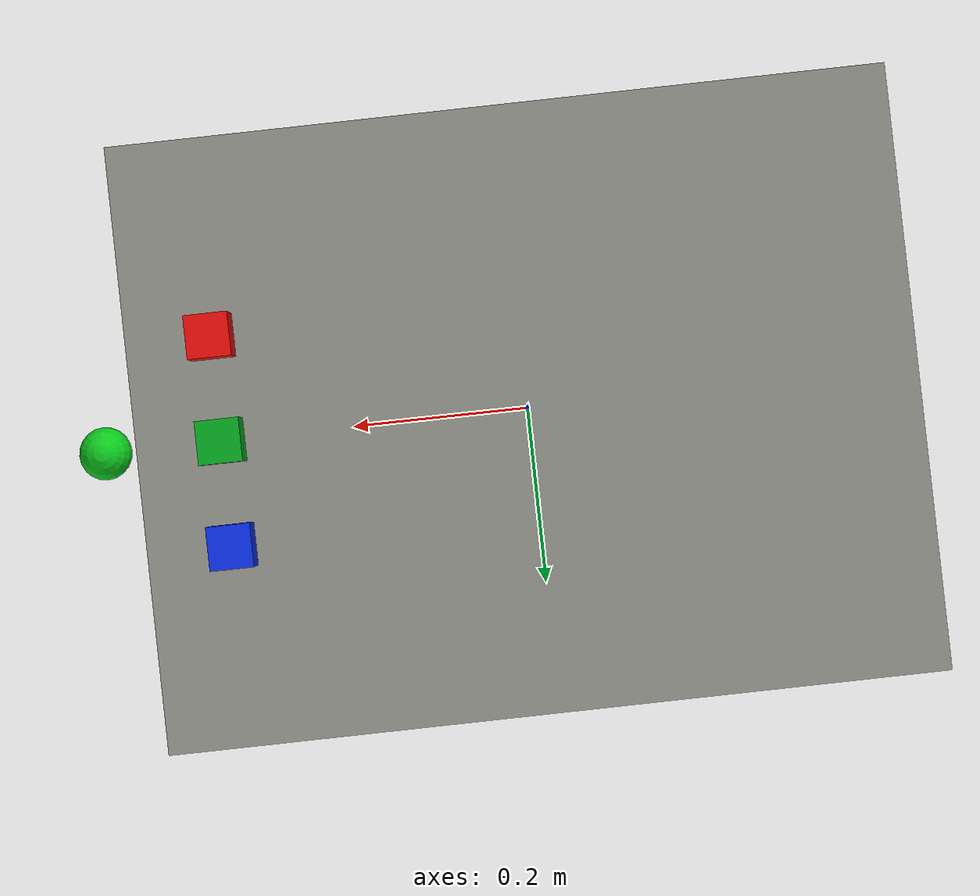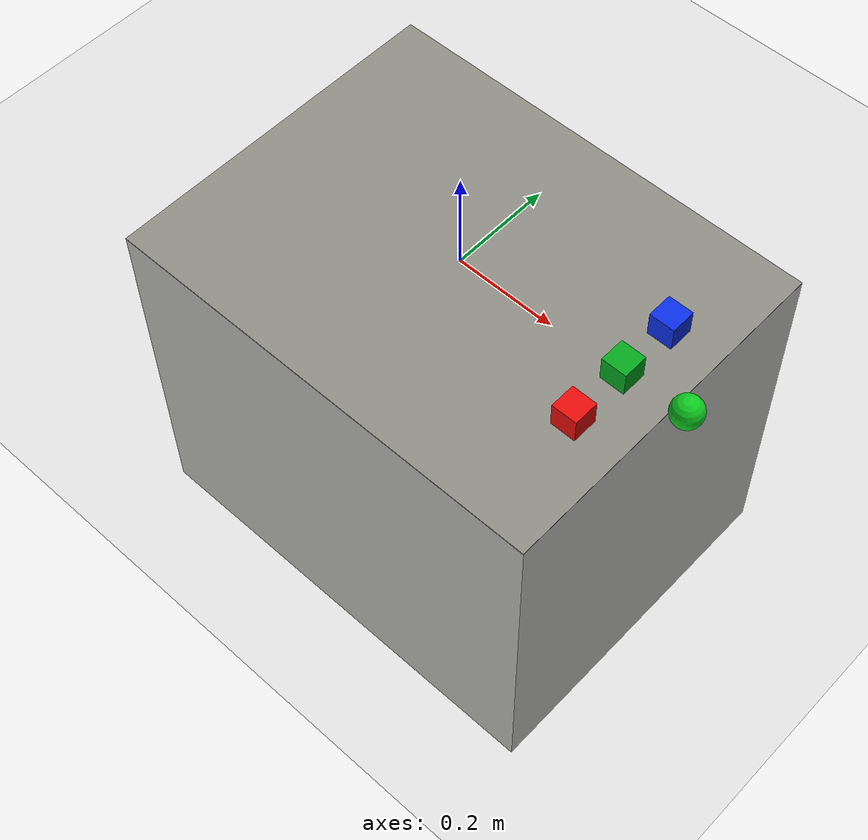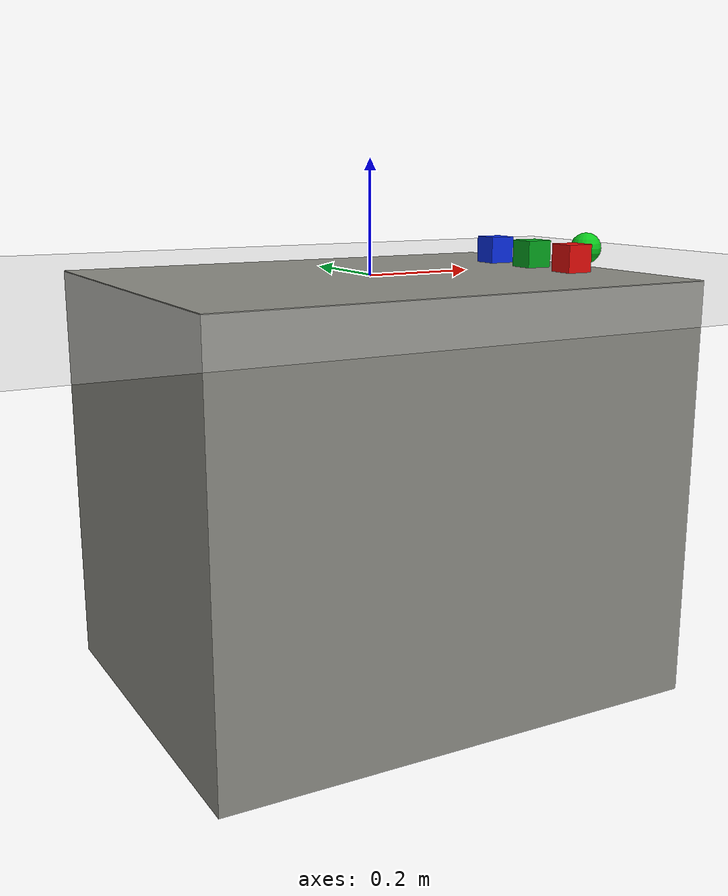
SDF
<?xml version="1.0"?>
<sdf version="1.6">
  <world name="empty_workcell">
    <gravity>0 0 -9.81</gravity>

    <plugin name="gazebo_ros_state" filename="libgazebo_ros_state.so">
      <ros>
        <namespace>/gazebo</namespace>
      </ros>
      <update_rate>20.0</update_rate>
    </plugin>

    <plugin name="gazebo_ros_properties" filename="libgazebo_ros_properties.so">
      <ros>
        <namespace>/gazebo</namespace>
      </ros>
    </plugin>

    <scene>
      <ambient>0.55 0.55 0.55 1</ambient>
      <background>0.78 0.82 0.86 1</background>
      <shadows>true</shadows>
    </scene>

    <gui fullscreen="0">
      <camera name="user_camera">
        <pose>1.7 -1.6 1.25 0 0.55 2.35</pose>
        <view_controller>orbit</view_controller>
        <projection_type>perspective</projection_type>
      </camera>
    </gui>

    <include>
      <uri>model://sun</uri>
    </include>

    <light name="workcell_key_light" type="directional">
      <pose>0 0 3 0 0 0</pose>
      <diffuse>0.9 0.9 0.85 1</diffuse>
      <specular>0.1 0.1 0.1 1</specular>
      <direction>-0.4 0.2 -1</direction>
    </light>

    <include>
      <uri>model://ground_plane</uri>
    </include>

    <model name="work_table">
      <static>true</static>
      <pose>0 0 -0.375 0 0 0</pose>
      <link name="table_link">
        <visual name="table_visual">
          <geometry>
            <box>
              <size>0.9 0.7 0.75</size>
            </box>
          </geometry>
          <material>
            <ambient>0.55 0.55 0.52 1</ambient>
            <diffuse>0.55 0.55 0.52 1</diffuse>
          </material>
        </visual>
        <collision name="table_collision">
          <geometry>
            <box>
              <size>0.9 0.7 0.75</size>
            </box>
          </geometry>
        </collision>
      </link>
    </model>

    <model name="red_block">
      <static>false</static>
      <pose>0.35 -0.12 0.025 0 0 0</pose>
      <link name="link">
        <inertial>
          <mass>0.08</mass>
          <inertia>
            <ixx>0.0000333</ixx>
            <iyy>0.0000333</iyy>
            <izz>0.0000333</izz>
          </inertia>
        </inertial>
        <collision name="collision">
          <geometry>
            <box>
              <size>0.05 0.05 0.05</size>
            </box>
          </geometry>
          <surface>
            <friction>
              <ode>
                <mu>1.2</mu>
                <mu2>1.2</mu2>
              </ode>
            </friction>
            <contact>
              <ode>
                <kp>100000</kp>
                <kd>1.0</kd>
              </ode>
            </contact>
          </surface>
        </collision>
        <visual name="visual">
          <geometry>
            <box>
              <size>0.05 0.05 0.05</size>
            </box>
          </geometry>
          <material>
            <ambient>0.9 0.05 0.04 1</ambient>
            <diffuse>0.9 0.05 0.04 1</diffuse>
          </material>
        </visual>
      </link>
    </model>

    <model name="green_block">
      <static>false</static>
      <pose>0.35 0.0 0.025 0 0 0</pose>
      <link name="link">
        <inertial>
          <mass>0.08</mass>
          <inertia>
            <ixx>0.0000333</ixx>
            <iyy>0.0000333</iyy>
            <izz>0.0000333</izz>
          </inertia>
        </inertial>
        <collision name="collision">
          <geometry>
            <box>
              <size>0.05 0.05 0.05</size>
            </box>
          </geometry>
          <surface>
            <friction>
              <ode>
                <mu>1.2</mu>
                <mu2>1.2</mu2>
              </ode>
            </friction>
            <contact>
              <ode>
                <kp>100000</kp>
                <kd>1.0</kd>
              </ode>
            </contact>
          </surface>
        </collision>
        <visual name="visual">
          <geometry>
            <box>
              <size>0.05 0.05 0.05</size>
            </box>
          </geometry>
          <material>
            <ambient>0.02 0.65 0.12 1</ambient>
            <diffuse>0.02 0.65 0.12 1</diffuse>
          </material>
        </visual>
      </link>
    </model>

    <model name="blue_block">
      <static>false</static>
      <pose>0.35 0.12 0.025 0 0 0</pose>
      <link name="link">
        <inertial>
          <mass>0.08</mass>
          <inertia>
            <ixx>0.0000333</ixx>
            <iyy>0.0000333</iyy>
            <izz>0.0000333</izz>
          </inertia>
        </inertial>
        <collision name="collision">
          <geometry>
            <box>
              <size>0.05 0.05 0.05</size>
            </box>
          </geometry>
          <surface>
            <friction>
              <ode>
                <mu>1.2</mu>
                <mu2>1.2</mu2>
              </ode>
            </friction>
            <contact>
              <ode>
                <kp>100000</kp>
                <kd>1.0</kd>
              </ode>
            </contact>
          </surface>
        </collision>
        <visual name="visual">
          <geometry>
            <box>
              <size>0.05 0.05 0.05</size>
            </box>
          </geometry>
          <material>
            <ambient>0.04 0.18 0.9 1</ambient>
            <diffuse>0.04 0.18 0.9 1</diffuse>
          </material>
        </visual>
      </link>
    </model>

    <model name="green_ball">
      <static>false</static>
      <pose>0.48 0.0 0.03 0 0 0</pose>
      <link name="link">
        <inertial>
          <mass>0.04</mass>
          <inertia>
            <ixx>0.0000144</ixx>
            <iyy>0.0000144</iyy>
            <izz>0.0000144</izz>
          </inertia>
        </inertial>
        <collision name="collision">
          <geometry>
            <sphere>
              <radius>0.03</radius>
            </sphere>
          </geometry>
          <surface>
            <friction>
              <ode>
                <mu>0.8</mu>
                <mu2>0.8</mu2>
              </ode>
            </friction>
            <contact>
              <ode>
                <kp>80000</kp>
                <kd>1.0</kd>
              </ode>
            </contact>
          </surface>
        </collision>
        <visual name="visual">
          <geometry>
            <sphere>
              <radius>0.03</radius>
            </sphere>
          </geometry>
          <material>
            <ambient>0.05 0.8 0.12 1</ambient>
            <diffuse>0.05 0.8 0.12 1</diffuse>
          </material>
        </visual>
      </link>
    </model>
  </world>
</sdf>
